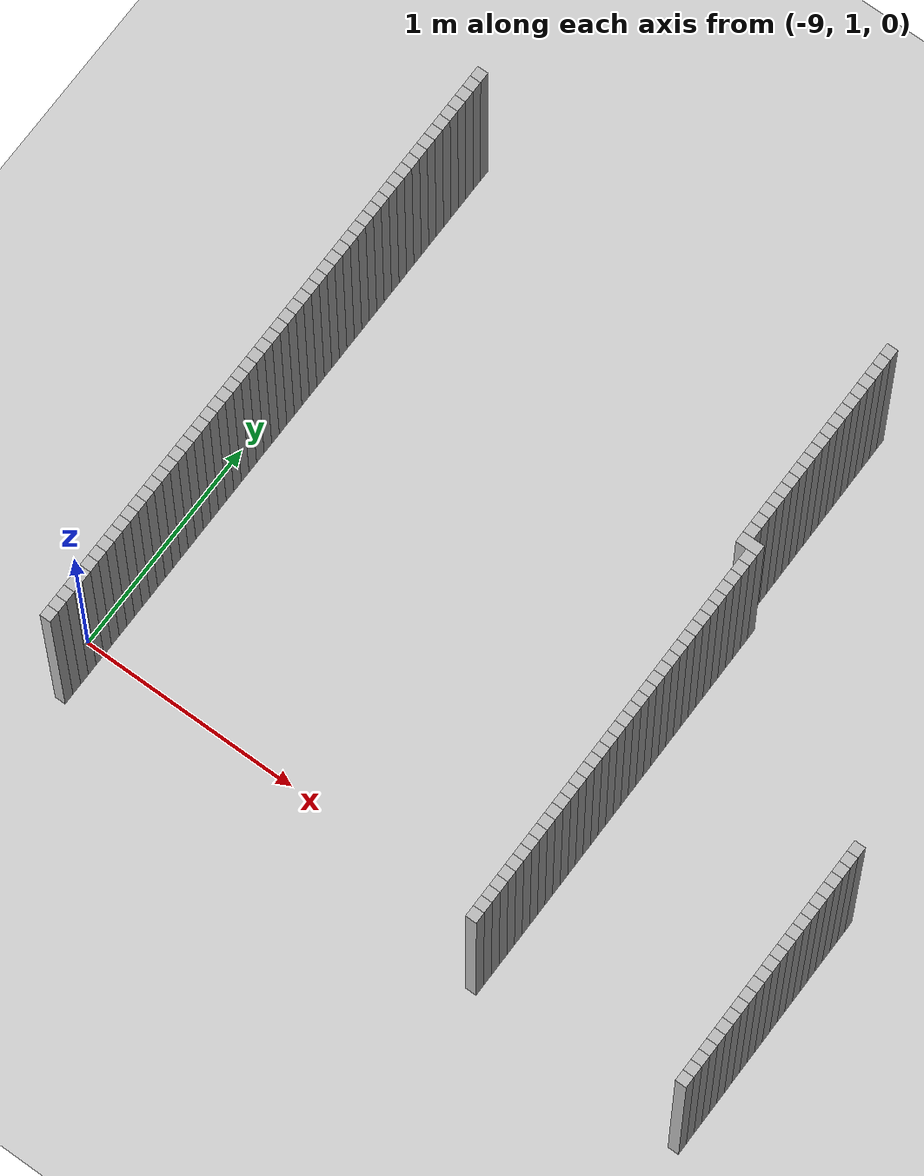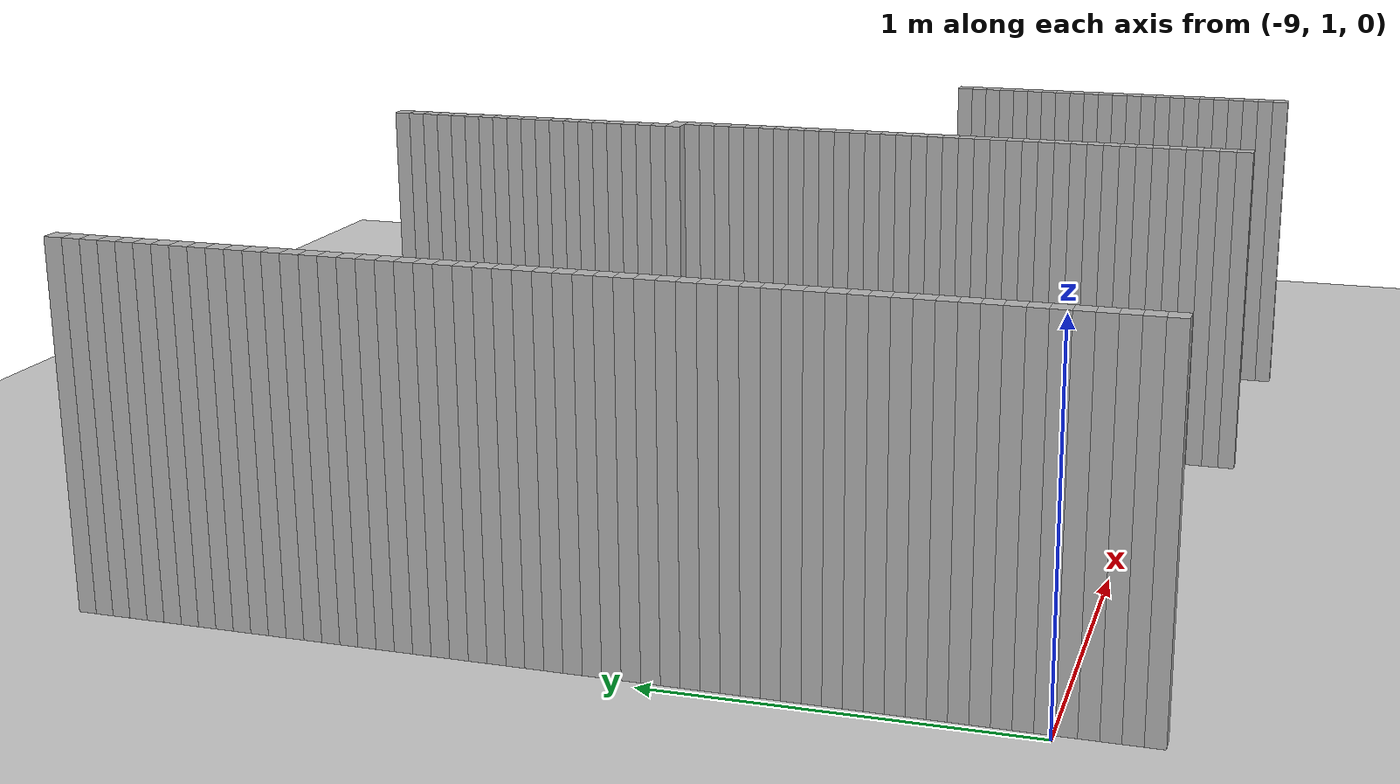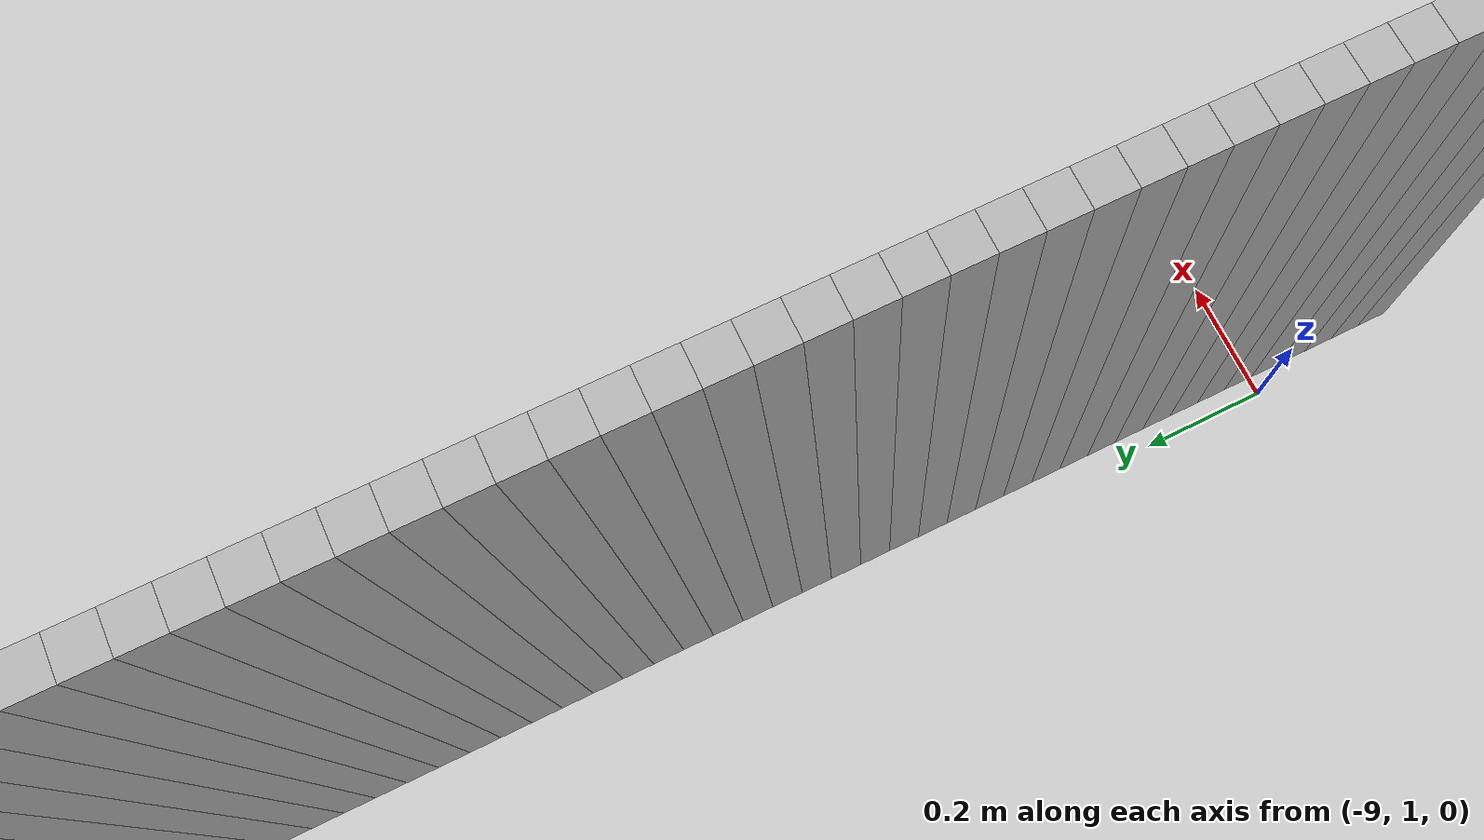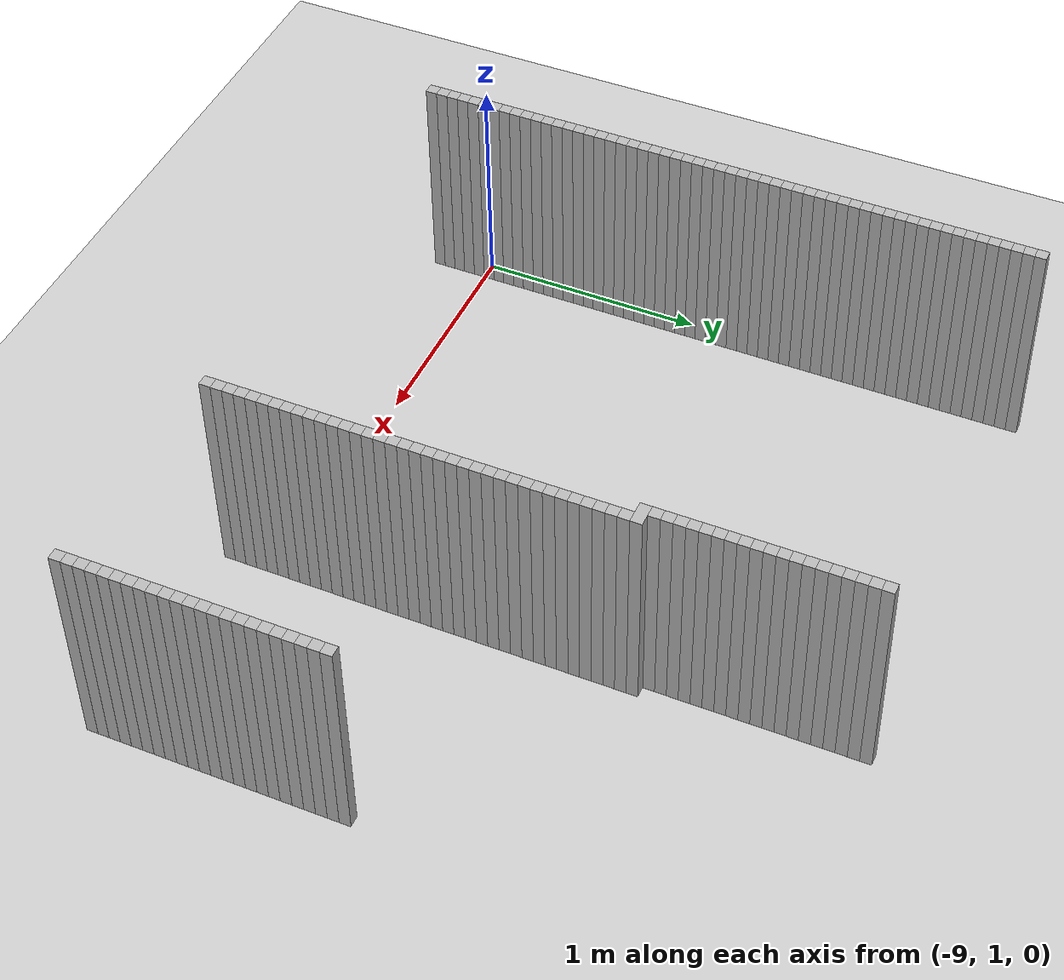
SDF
<sdf version="1.6">
 <world name="udh1_world">
  <include><uri>model://ground_plane</uri></include>
  <include><uri>model://sun</uri></include>
  <model name="wall_806">
   <static>true</static>
   <pose>-8.945 3.5199999999999996 0.5 0 0 0</pose>
   <link name="link">
    <collision name="col"><geometry><box><size>0.05 0.05 1</size></box></geometry></collision>
    <visual name="vis"><geometry><box><size>0.05 0.05 1</size></box></geometry></visual>
   </link>
  </model>
  <model name="wall_807">
   <static>true</static>
   <pose>-6.994999999999999 3.5199999999999996 0.5 0 0 0</pose>
   <link name="link">
    <collision name="col"><geometry><box><size>0.05 0.05 1</size></box></geometry></collision>
    <visual name="vis"><geometry><box><size>0.05 0.05 1</size></box></geometry></visual>
   </link>
  </model>
  <model name="wall_816">
   <static>true</static>
   <pose>-8.945 3.4700000000000006 0.5 0 0 0</pose>
   <link name="link">
    <collision name="col"><geometry><box><size>0.05 0.05 1</size></box></geometry></collision>
    <visual name="vis"><geometry><box><size>0.05 0.05 1</size></box></geometry></visual>
   </link>
  </model>
  <model name="wall_817">
   <static>true</static>
   <pose>-6.994999999999999 3.4700000000000006 0.5 0 0 0</pose>
   <link name="link">
    <collision name="col"><geometry><box><size>0.05 0.05 1</size></box></geometry></collision>
    <visual name="vis"><geometry><box><size>0.05 0.05 1</size></box></geometry></visual>
   </link>
  </model>
  <model name="wall_826">
   <static>true</static>
   <pose>-8.945 3.42 0.5 0 0 0</pose>
   <link name="link">
    <collision name="col"><geometry><box><size>0.05 0.05 1</size></box></geometry></collision>
    <visual name="vis"><geometry><box><size>0.05 0.05 1</size></box></geometry></visual>
   </link>
  </model>
  <model name="wall_827">
   <static>true</static>
   <pose>-6.994999999999999 3.42 0.5 0 0 0</pose>
   <link name="link">
    <collision name="col"><geometry><box><size>0.05 0.05 1</size></box></geometry></collision>
    <visual name="vis"><geometry><box><size>0.05 0.05 1</size></box></geometry></visual>
   </link>
  </model>
  <model name="wall_836">
   <static>true</static>
   <pose>-8.945 3.369999999999999 0.5 0 0 0</pose>
   <link name="link">
    <collision name="col"><geometry><box><size>0.05 0.05 1</size></box></geometry></collision>
    <visual name="vis"><geometry><box><size>0.05 0.05 1</size></box></geometry></visual>
   </link>
  </model>
  <model name="wall_837">
   <static>true</static>
   <pose>-6.994999999999999 3.369999999999999 0.5 0 0 0</pose>
   <link name="link">
    <collision name="col"><geometry><box><size>0.05 0.05 1</size></box></geometry></collision>
    <visual name="vis"><geometry><box><size>0.05 0.05 1</size></box></geometry></visual>
   </link>
  </model>
  <model name="wall_846">
   <static>true</static>
   <pose>-8.945 3.3200000000000003 0.5 0 0 0</pose>
   <link name="link">
    <collision name="col"><geometry><box><size>0.05 0.05 1</size></box></geometry></collision>
    <visual name="vis"><geometry><box><size>0.05 0.05 1</size></box></geometry></visual>
   </link>
  </model>
  <model name="wall_847">
   <static>true</static>
   <pose>-6.994999999999999 3.3200000000000003 0.5 0 0 0</pose>
   <link name="link">
    <collision name="col"><geometry><box><size>0.05 0.05 1</size></box></geometry></collision>
    <visual name="vis"><geometry><box><size>0.05 0.05 1</size></box></geometry></visual>
   </link>
  </model>
  <model name="wall_856">
   <static>true</static>
   <pose>-8.945 3.2699999999999996 0.5 0 0 0</pose>
   <link name="link">
    <collision name="col"><geometry><box><size>0.05 0.05 1</size></box></geometry></collision>
    <visual name="vis"><geometry><box><size>0.05 0.05 1</size></box></geometry></visual>
   </link>
  </model>
  <model name="wall_857">
   <static>true</static>
   <pose>-6.994999999999999 3.2699999999999996 0.5 0 0 0</pose>
   <link name="link">
    <collision name="col"><geometry><box><size>0.05 0.05 1</size></box></geometry></collision>
    <visual name="vis"><geometry><box><size>0.05 0.05 1</size></box></geometry></visual>
   </link>
  </model>
  <model name="wall_866">
   <static>true</static>
   <pose>-8.945 3.2200000000000006 0.5 0 0 0</pose>
   <link name="link">
    <collision name="col"><geometry><box><size>0.05 0.05 1</size></box></geometry></collision>
    <visual name="vis"><geometry><box><size>0.05 0.05 1</size></box></geometry></visual>
   </link>
  </model>
  <model name="wall_867">
   <static>true</static>
   <pose>-6.994999999999999 3.2200000000000006 0.5 0 0 0</pose>
   <link name="link">
    <collision name="col"><geometry><box><size>0.05 0.05 1</size></box></geometry></collision>
    <visual name="vis"><geometry><box><size>0.05 0.05 1</size></box></geometry></visual>
   </link>
  </model>
  <model name="wall_876">
   <static>true</static>
   <pose>-8.945 3.17 0.5 0 0 0</pose>
   <link name="link">
    <collision name="col"><geometry><box><size>0.05 0.05 1</size></box></geometry></collision>
    <visual name="vis"><geometry><box><size>0.05 0.05 1</size></box></geometry></visual>
   </link>
  </model>
  <model name="wall_877">
   <static>true</static>
   <pose>-6.994999999999999 3.17 0.5 0 0 0</pose>
   <link name="link">
    <collision name="col"><geometry><box><size>0.05 0.05 1</size></box></geometry></collision>
    <visual name="vis"><geometry><box><size>0.05 0.05 1</size></box></geometry></visual>
   </link>
  </model>
  <model name="wall_886">
   <static>true</static>
   <pose>-8.945 3.119999999999999 0.5 0 0 0</pose>
   <link name="link">
    <collision name="col"><geometry><box><size>0.05 0.05 1</size></box></geometry></collision>
    <visual name="vis"><geometry><box><size>0.05 0.05 1</size></box></geometry></visual>
   </link>
  </model>
  <model name="wall_887">
   <static>true</static>
   <pose>-6.994999999999999 3.119999999999999 0.5 0 0 0</pose>
   <link name="link">
    <collision name="col"><geometry><box><size>0.05 0.05 1</size></box></geometry></collision>
    <visual name="vis"><geometry><box><size>0.05 0.05 1</size></box></geometry></visual>
   </link>
  </model>
  <model name="wall_896">
   <static>true</static>
   <pose>-8.945 3.0700000000000003 0.5 0 0 0</pose>
   <link name="link">
    <collision name="col"><geometry><box><size>0.05 0.05 1</size></box></geometry></collision>
    <visual name="vis"><geometry><box><size>0.05 0.05 1</size></box></geometry></visual>
   </link>
  </model>
  <model name="wall_897">
   <static>true</static>
   <pose>-6.994999999999999 3.0700000000000003 0.5 0 0 0</pose>
   <link name="link">
    <collision name="col"><geometry><box><size>0.05 0.05 1</size></box></geometry></collision>
    <visual name="vis"><geometry><box><size>0.05 0.05 1</size></box></geometry></visual>
   </link>
  </model>
  <model name="wall_906">
   <static>true</static>
   <pose>-8.945 3.0199999999999996 0.5 0 0 0</pose>
   <link name="link">
    <collision name="col"><geometry><box><size>0.05 0.05 1</size></box></geometry></collision>
    <visual name="vis"><geometry><box><size>0.05 0.05 1</size></box></geometry></visual>
   </link>
  </model>
  <model name="wall_907">
   <static>true</static>
   <pose>-6.994999999999999 3.0199999999999996 0.5 0 0 0</pose>
   <link name="link">
    <collision name="col"><geometry><box><size>0.05 0.05 1</size></box></geometry></collision>
    <visual name="vis"><geometry><box><size>0.05 0.05 1</size></box></geometry></visual>
   </link>
  </model>
  <model name="wall_916">
   <static>true</static>
   <pose>-8.945 2.9700000000000006 0.5 0 0 0</pose>
   <link name="link">
    <collision name="col"><geometry><box><size>0.05 0.05 1</size></box></geometry></collision>
    <visual name="vis"><geometry><box><size>0.05 0.05 1</size></box></geometry></visual>
   </link>
  </model>
  <model name="wall_917">
   <static>true</static>
   <pose>-6.994999999999999 2.9700000000000006 0.5 0 0 0</pose>
   <link name="link">
    <collision name="col"><geometry><box><size>0.05 0.05 1</size></box></geometry></collision>
    <visual name="vis"><geometry><box><size>0.05 0.05 1</size></box></geometry></visual>
   </link>
  </model>
  <model name="wall_926">
   <static>true</static>
   <pose>-8.945 2.92 0.5 0 0 0</pose>
   <link name="link">
    <collision name="col"><geometry><box><size>0.05 0.05 1</size></box></geometry></collision>
    <visual name="vis"><geometry><box><size>0.05 0.05 1</size></box></geometry></visual>
   </link>
  </model>
  <model name="wall_927">
   <static>true</static>
   <pose>-6.994999999999999 2.92 0.5 0 0 0</pose>
   <link name="link">
    <collision name="col"><geometry><box><size>0.05 0.05 1</size></box></geometry></collision>
    <visual name="vis"><geometry><box><size>0.05 0.05 1</size></box></geometry></visual>
   </link>
  </model>
  <model name="wall_936">
   <static>true</static>
   <pose>-8.945 2.869999999999999 0.5 0 0 0</pose>
   <link name="link">
    <collision name="col"><geometry><box><size>0.05 0.05 1</size></box></geometry></collision>
    <visual name="vis"><geometry><box><size>0.05 0.05 1</size></box></geometry></visual>
   </link>
  </model>
  <model name="wall_937">
   <static>true</static>
   <pose>-6.994999999999999 2.869999999999999 0.5 0 0 0</pose>
   <link name="link">
    <collision name="col"><geometry><box><size>0.05 0.05 1</size></box></geometry></collision>
    <visual name="vis"><geometry><box><size>0.05 0.05 1</size></box></geometry></visual>
   </link>
  </model>
  <model name="wall_946">
   <static>true</static>
   <pose>-8.945 2.8200000000000003 0.5 0 0 0</pose>
   <link name="link">
    <collision name="col"><geometry><box><size>0.05 0.05 1</size></box></geometry></collision>
    <visual name="vis"><geometry><box><size>0.05 0.05 1</size></box></geometry></visual>
   </link>
  </model>
  <model name="wall_947">
   <static>true</static>
   <pose>-6.994999999999999 2.8200000000000003 0.5 0 0 0</pose>
   <link name="link">
    <collision name="col"><geometry><box><size>0.05 0.05 1</size></box></geometry></collision>
    <visual name="vis"><geometry><box><size>0.05 0.05 1</size></box></geometry></visual>
   </link>
  </model>
  <model name="wall_956">
   <static>true</static>
   <pose>-8.945 2.7699999999999996 0.5 0 0 0</pose>
   <link name="link">
    <collision name="col"><geometry><box><size>0.05 0.05 1</size></box></geometry></collision>
    <visual name="vis"><geometry><box><size>0.05 0.05 1</size></box></geometry></visual>
   </link>
  </model>
  <model name="wall_957">
   <static>true</static>
   <pose>-6.994999999999999 2.7699999999999996 0.5 0 0 0</pose>
   <link name="link">
    <collision name="col"><geometry><box><size>0.05 0.05 1</size></box></geometry></collision>
    <visual name="vis"><geometry><box><size>0.05 0.05 1</size></box></geometry></visual>
   </link>
  </model>
  <model name="wall_966">
   <static>true</static>
   <pose>-8.945 2.7200000000000006 0.5 0 0 0</pose>
   <link name="link">
    <collision name="col"><geometry><box><size>0.05 0.05 1</size></box></geometry></collision>
    <visual name="vis"><geometry><box><size>0.05 0.05 1</size></box></geometry></visual>
   </link>
  </model>
  <model name="wall_967">
   <static>true</static>
   <pose>-6.994999999999999 2.7200000000000006 0.5 0 0 0</pose>
   <link name="link">
    <collision name="col"><geometry><box><size>0.05 0.05 1</size></box></geometry></collision>
    <visual name="vis"><geometry><box><size>0.05 0.05 1</size></box></geometry></visual>
   </link>
  </model>
  <model name="wall_976">
   <static>true</static>
   <pose>-8.945 2.67 0.5 0 0 0</pose>
   <link name="link">
    <collision name="col"><geometry><box><size>0.05 0.05 1</size></box></geometry></collision>
    <visual name="vis"><geometry><box><size>0.05 0.05 1</size></box></geometry></visual>
   </link>
  </model>
  <model name="wall_977">
   <static>true</static>
   <pose>-6.994999999999999 2.67 0.5 0 0 0</pose>
   <link name="link">
    <collision name="col"><geometry><box><size>0.05 0.05 1</size></box></geometry></collision>
    <visual name="vis"><geometry><box><size>0.05 0.05 1</size></box></geometry></visual>
   </link>
  </model>
  <model name="wall_986">
   <static>true</static>
   <pose>-8.945 2.619999999999999 0.5 0 0 0</pose>
   <link name="link">
    <collision name="col"><geometry><box><size>0.05 0.05 1</size></box></geometry></collision>
    <visual name="vis"><geometry><box><size>0.05 0.05 1</size></box></geometry></visual>
   </link>
  </model>
  <model name="wall_987">
   <static>true</static>
   <pose>-6.994999999999999 2.619999999999999 0.5 0 0 0</pose>
   <link name="link">
    <collision name="col"><geometry><box><size>0.05 0.05 1</size></box></geometry></collision>
    <visual name="vis"><geometry><box><size>0.05 0.05 1</size></box></geometry></visual>
   </link>
  </model>
  <model name="wall_996">
   <static>true</static>
   <pose>-8.945 2.5700000000000003 0.5 0 0 0</pose>
   <link name="link">
    <collision name="col"><geometry><box><size>0.05 0.05 1</size></box></geometry></collision>
    <visual name="vis"><geometry><box><size>0.05 0.05 1</size></box></geometry></visual>
   </link>
  </model>
  <model name="wall_997">
   <static>true</static>
   <pose>-6.969999999999999 2.5700000000000003 0.5 0 0 0</pose>
   <link name="link">
    <collision name="col"><geometry><box><size>0.1 0.05 1</size></box></geometry></collision>
    <visual name="vis"><geometry><box><size>0.1 0.05 1</size></box></geometry></visual>
   </link>
  </model>
  <model name="wall_1006">
   <static>true</static>
   <pose>-8.945 2.5199999999999996 0.5 0 0 0</pose>
   <link name="link">
    <collision name="col"><geometry><box><size>0.05 0.05 1</size></box></geometry></collision>
    <visual name="vis"><geometry><box><size>0.05 0.05 1</size></box></geometry></visual>
   </link>
  </model>
  <model name="wall_1007">
   <static>true</static>
   <pose>-6.944999999999999 2.5199999999999996 0.5 0 0 0</pose>
   <link name="link">
    <collision name="col"><geometry><box><size>0.05 0.05 1</size></box></geometry></collision>
    <visual name="vis"><geometry><box><size>0.05 0.05 1</size></box></geometry></visual>
   </link>
  </model>
  <model name="wall_1016">
   <static>true</static>
   <pose>-8.945 2.4700000000000006 0.5 0 0 0</pose>
   <link name="link">
    <collision name="col"><geometry><box><size>0.05 0.05 1</size></box></geometry></collision>
    <visual name="vis"><geometry><box><size>0.05 0.05 1</size></box></geometry></visual>
   </link>
  </model>
  <model name="wall_1017">
   <static>true</static>
   <pose>-6.944999999999999 2.4700000000000006 0.5 0 0 0</pose>
   <link name="link">
    <collision name="col"><geometry><box><size>0.05 0.05 1</size></box></geometry></collision>
    <visual name="vis"><geometry><box><size>0.05 0.05 1</size></box></geometry></visual>
   </link>
  </model>
  <model name="wall_1026">
   <static>true</static>
   <pose>-8.945 2.42 0.5 0 0 0</pose>
   <link name="link">
    <collision name="col"><geometry><box><size>0.05 0.05 1</size></box></geometry></collision>
    <visual name="vis"><geometry><box><size>0.05 0.05 1</size></box></geometry></visual>
   </link>
  </model>
  <model name="wall_1027">
   <static>true</static>
   <pose>-6.944999999999999 2.42 0.5 0 0 0</pose>
   <link name="link">
    <collision name="col"><geometry><box><size>0.05 0.05 1</size></box></geometry></collision>
    <visual name="vis"><geometry><box><size>0.05 0.05 1</size></box></geometry></visual>
   </link>
  </model>
  <model name="wall_1036">
   <static>true</static>
   <pose>-8.945 2.369999999999999 0.5 0 0 0</pose>
   <link name="link">
    <collision name="col"><geometry><box><size>0.05 0.05 1</size></box></geometry></collision>
    <visual name="vis"><geometry><box><size>0.05 0.05 1</size></box></geometry></visual>
   </link>
  </model>
  <model name="wall_1037">
   <static>true</static>
   <pose>-6.944999999999999 2.369999999999999 0.5 0 0 0</pose>
   <link name="link">
    <collision name="col"><geometry><box><size>0.05 0.05 1</size></box></geometry></collision>
    <visual name="vis"><geometry><box><size>0.05 0.05 1</size></box></geometry></visual>
   </link>
  </model>
  <model name="wall_1046">
   <static>true</static>
   <pose>-8.945 2.3200000000000003 0.5 0 0 0</pose>
   <link name="link">
    <collision name="col"><geometry><box><size>0.05 0.05 1</size></box></geometry></collision>
    <visual name="vis"><geometry><box><size>0.05 0.05 1</size></box></geometry></visual>
   </link>
  </model>
  <model name="wall_1047">
   <static>true</static>
   <pose>-6.944999999999999 2.3200000000000003 0.5 0 0 0</pose>
   <link name="link">
    <collision name="col"><geometry><box><size>0.05 0.05 1</size></box></geometry></collision>
    <visual name="vis"><geometry><box><size>0.05 0.05 1</size></box></geometry></visual>
   </link>
  </model>
  <model name="wall_1056">
   <static>true</static>
   <pose>-8.945 2.2699999999999996 0.5 0 0 0</pose>
   <link name="link">
    <collision name="col"><geometry><box><size>0.05 0.05 1</size></box></geometry></collision>
    <visual name="vis"><geometry><box><size>0.05 0.05 1</size></box></geometry></visual>
   </link>
  </model>
  <model name="wall_1057">
   <static>true</static>
   <pose>-6.944999999999999 2.2699999999999996 0.5 0 0 0</pose>
   <link name="link">
    <collision name="col"><geometry><box><size>0.05 0.05 1</size></box></geometry></collision>
    <visual name="vis"><geometry><box><size>0.05 0.05 1</size></box></geometry></visual>
   </link>
  </model>
  <model name="wall_1066">
   <static>true</static>
   <pose>-8.945 2.2200000000000006 0.5 0 0 0</pose>
   <link name="link">
    <collision name="col"><geometry><box><size>0.05 0.05 1</size></box></geometry></collision>
    <visual name="vis"><geometry><box><size>0.05 0.05 1</size></box></geometry></visual>
   </link>
  </model>
  <model name="wall_1067">
   <static>true</static>
   <pose>-6.944999999999999 2.2200000000000006 0.5 0 0 0</pose>
   <link name="link">
    <collision name="col"><geometry><box><size>0.05 0.05 1</size></box></geometry></collision>
    <visual name="vis"><geometry><box><size>0.05 0.05 1</size></box></geometry></visual>
   </link>
  </model>
  <model name="wall_1076">
   <static>true</static>
   <pose>-8.945 2.17 0.5 0 0 0</pose>
   <link name="link">
    <collision name="col"><geometry><box><size>0.05 0.05 1</size></box></geometry></collision>
    <visual name="vis"><geometry><box><size>0.05 0.05 1</size></box></geometry></visual>
   </link>
  </model>
  <model name="wall_1077">
   <static>true</static>
   <pose>-6.944999999999999 2.17 0.5 0 0 0</pose>
   <link name="link">
    <collision name="col"><geometry><box><size>0.05 0.05 1</size></box></geometry></collision>
    <visual name="vis"><geometry><box><size>0.05 0.05 1</size></box></geometry></visual>
   </link>
  </model>
  <model name="wall_1093">
   <static>true</static>
   <pose>-8.945 2.119999999999999 0.5 0 0 0</pose>
   <link name="link">
    <collision name="col"><geometry><box><size>0.05 0.05 1</size></box></geometry></collision>
    <visual name="vis"><geometry><box><size>0.05 0.05 1</size></box></geometry></visual>
   </link>
  </model>
  <model name="wall_1094">
   <static>true</static>
   <pose>-6.944999999999999 2.119999999999999 0.5 0 0 0</pose>
   <link name="link">
    <collision name="col"><geometry><box><size>0.05 0.05 1</size></box></geometry></collision>
    <visual name="vis"><geometry><box><size>0.05 0.05 1</size></box></geometry></visual>
   </link>
  </model>
  <model name="wall_1103">
   <static>true</static>
   <pose>-8.945 2.0700000000000003 0.5 0 0 0</pose>
   <link name="link">
    <collision name="col"><geometry><box><size>0.05 0.05 1</size></box></geometry></collision>
    <visual name="vis"><geometry><box><size>0.05 0.05 1</size></box></geometry></visual>
   </link>
  </model>
  <model name="wall_1104">
   <static>true</static>
   <pose>-6.944999999999999 2.0700000000000003 0.5 0 0 0</pose>
   <link name="link">
    <collision name="col"><geometry><box><size>0.05 0.05 1</size></box></geometry></collision>
    <visual name="vis"><geometry><box><size>0.05 0.05 1</size></box></geometry></visual>
   </link>
  </model>
  <model name="wall_1113">
   <static>true</static>
   <pose>-8.945 2.0199999999999996 0.5 0 0 0</pose>
   <link name="link">
    <collision name="col"><geometry><box><size>0.05 0.05 1</size></box></geometry></collision>
    <visual name="vis"><geometry><box><size>0.05 0.05 1</size></box></geometry></visual>
   </link>
  </model>
  <model name="wall_1114">
   <static>true</static>
   <pose>-6.944999999999999 2.0199999999999996 0.5 0 0 0</pose>
   <link name="link">
    <collision name="col"><geometry><box><size>0.05 0.05 1</size></box></geometry></collision>
    <visual name="vis"><geometry><box><size>0.05 0.05 1</size></box></geometry></visual>
   </link>
  </model>
  <model name="wall_1123">
   <static>true</static>
   <pose>-8.945 1.9700000000000006 0.5 0 0 0</pose>
   <link name="link">
    <collision name="col"><geometry><box><size>0.05 0.05 1</size></box></geometry></collision>
    <visual name="vis"><geometry><box><size>0.05 0.05 1</size></box></geometry></visual>
   </link>
  </model>
  <model name="wall_1124">
   <static>true</static>
   <pose>-6.944999999999999 1.9700000000000006 0.5 0 0 0</pose>
   <link name="link">
    <collision name="col"><geometry><box><size>0.05 0.05 1</size></box></geometry></collision>
    <visual name="vis"><geometry><box><size>0.05 0.05 1</size></box></geometry></visual>
   </link>
  </model>
  <model name="wall_1133">
   <static>true</static>
   <pose>-8.945 1.92 0.5 0 0 0</pose>
   <link name="link">
    <collision name="col"><geometry><box><size>0.05 0.05 1</size></box></geometry></collision>
    <visual name="vis"><geometry><box><size>0.05 0.05 1</size></box></geometry></visual>
   </link>
  </model>
  <model name="wall_1134">
   <static>true</static>
   <pose>-6.944999999999999 1.92 0.5 0 0 0</pose>
   <link name="link">
    <collision name="col"><geometry><box><size>0.05 0.05 1</size></box></geometry></collision>
    <visual name="vis"><geometry><box><size>0.05 0.05 1</size></box></geometry></visual>
   </link>
  </model>
  <model name="wall_1143">
   <static>true</static>
   <pose>-8.945 1.8699999999999992 0.5 0 0 0</pose>
   <link name="link">
    <collision name="col"><geometry><box><size>0.05 0.05 1</size></box></geometry></collision>
    <visual name="vis"><geometry><box><size>0.05 0.05 1</size></box></geometry></visual>
   </link>
  </model>
  <model name="wall_1144">
   <static>true</static>
   <pose>-6.944999999999999 1.8699999999999992 0.5 0 0 0</pose>
   <link name="link">
    <collision name="col"><geometry><box><size>0.05 0.05 1</size></box></geometry></collision>
    <visual name="vis"><geometry><box><size>0.05 0.05 1</size></box></geometry></visual>
   </link>
  </model>
  <model name="wall_1153">
   <static>true</static>
   <pose>-8.945 1.8200000000000003 0.5 0 0 0</pose>
   <link name="link">
    <collision name="col"><geometry><box><size>0.05 0.05 1</size></box></geometry></collision>
    <visual name="vis"><geometry><box><size>0.05 0.05 1</size></box></geometry></visual>
   </link>
  </model>
  <model name="wall_1154">
   <static>true</static>
   <pose>-6.944999999999999 1.8200000000000003 0.5 0 0 0</pose>
   <link name="link">
    <collision name="col"><geometry><box><size>0.05 0.05 1</size></box></geometry></collision>
    <visual name="vis"><geometry><box><size>0.05 0.05 1</size></box></geometry></visual>
   </link>
  </model>
  <model name="wall_1155">
   <static>true</static>
   <pose>-5.944999999999999 1.8200000000000003 0.5 0 0 0</pose>
   <link name="link">
    <collision name="col"><geometry><box><size>0.05 0.05 1</size></box></geometry></collision>
    <visual name="vis"><geometry><box><size>0.05 0.05 1</size></box></geometry></visual>
   </link>
  </model>
  <model name="wall_1163">
   <static>true</static>
   <pose>-8.945 1.7699999999999996 0.5 0 0 0</pose>
   <link name="link">
    <collision name="col"><geometry><box><size>0.05 0.05 1</size></box></geometry></collision>
    <visual name="vis"><geometry><box><size>0.05 0.05 1</size></box></geometry></visual>
   </link>
  </model>
  <model name="wall_1164">
   <static>true</static>
   <pose>-6.944999999999999 1.7699999999999996 0.5 0 0 0</pose>
   <link name="link">
    <collision name="col"><geometry><box><size>0.05 0.05 1</size></box></geometry></collision>
    <visual name="vis"><geometry><box><size>0.05 0.05 1</size></box></geometry></visual>
   </link>
  </model>
  <model name="wall_1165">
   <static>true</static>
   <pose>-5.944999999999999 1.7699999999999996 0.5 0 0 0</pose>
   <link name="link">
    <collision name="col"><geometry><box><size>0.05 0.05 1</size></box></geometry></collision>
    <visual name="vis"><geometry><box><size>0.05 0.05 1</size></box></geometry></visual>
   </link>
  </model>
  <model name="wall_1173">
   <static>true</static>
   <pose>-8.945 1.7200000000000006 0.5 0 0 0</pose>
   <link name="link">
    <collision name="col"><geometry><box><size>0.05 0.05 1</size></box></geometry></collision>
    <visual name="vis"><geometry><box><size>0.05 0.05 1</size></box></geometry></visual>
   </link>
  </model>
  <model name="wall_1174">
   <static>true</static>
   <pose>-6.944999999999999 1.7200000000000006 0.5 0 0 0</pose>
   <link name="link">
    <collision name="col"><geometry><box><size>0.05 0.05 1</size></box></geometry></collision>
    <visual name="vis"><geometry><box><size>0.05 0.05 1</size></box></geometry></visual>
   </link>
  </model>
  <model name="wall_1175">
   <static>true</static>
   <pose>-5.944999999999999 1.7200000000000006 0.5 0 0 0</pose>
   <link name="link">
    <collision name="col"><geometry><box><size>0.05 0.05 1</size></box></geometry></collision>
    <visual name="vis"><geometry><box><size>0.05 0.05 1</size></box></geometry></visual>
   </link>
  </model>
  <model name="wall_1183">
   <static>true</static>
   <pose>-8.945 1.67 0.5 0 0 0</pose>
   <link name="link">
    <collision name="col"><geometry><box><size>0.05 0.05 1</size></box></geometry></collision>
    <visual name="vis"><geometry><box><size>0.05 0.05 1</size></box></geometry></visual>
   </link>
  </model>
  <model name="wall_1184">
   <static>true</static>
   <pose>-6.944999999999999 1.67 0.5 0 0 0</pose>
   <link name="link">
    <collision name="col"><geometry><box><size>0.05 0.05 1</size></box></geometry></collision>
    <visual name="vis"><geometry><box><size>0.05 0.05 1</size></box></geometry></visual>
   </link>
  </model>
  <model name="wall_1185">
   <static>true</static>
   <pose>-5.944999999999999 1.67 0.5 0 0 0</pose>
   <link name="link">
    <collision name="col"><geometry><box><size>0.05 0.05 1</size></box></geometry></collision>
    <visual name="vis"><geometry><box><size>0.05 0.05 1</size></box></geometry></visual>
   </link>
  </model>
  <model name="wall_1192">
   <static>true</static>
   <pose>-8.945 1.6199999999999992 0.5 0 0 0</pose>
   <link name="link">
    <collision name="col"><geometry><box><size>0.05 0.05 1</size></box></geometry></collision>
    <visual name="vis"><geometry><box><size>0.05 0.05 1</size></box></geometry></visual>
   </link>
  </model>
  <model name="wall_1193">
   <static>true</static>
   <pose>-6.944999999999999 1.6199999999999992 0.5 0 0 0</pose>
   <link name="link">
    <collision name="col"><geometry><box><size>0.05 0.05 1</size></box></geometry></collision>
    <visual name="vis"><geometry><box><size>0.05 0.05 1</size></box></geometry></visual>
   </link>
  </model>
  <model name="wall_1194">
   <static>true</static>
   <pose>-5.944999999999999 1.6199999999999992 0.5 0 0 0</pose>
   <link name="link">
    <collision name="col"><geometry><box><size>0.05 0.05 1</size></box></geometry></collision>
    <visual name="vis"><geometry><box><size>0.05 0.05 1</size></box></geometry></visual>
   </link>
  </model>
  <model name="wall_1201">
   <static>true</static>
   <pose>-8.945 1.5700000000000003 0.5 0 0 0</pose>
   <link name="link">
    <collision name="col"><geometry><box><size>0.05 0.05 1</size></box></geometry></collision>
    <visual name="vis"><geometry><box><size>0.05 0.05 1</size></box></geometry></visual>
   </link>
  </model>
  <model name="wall_1202">
   <static>true</static>
   <pose>-6.944999999999999 1.5700000000000003 0.5 0 0 0</pose>
   <link name="link">
    <collision name="col"><geometry><box><size>0.05 0.05 1</size></box></geometry></collision>
    <visual name="vis"><geometry><box><size>0.05 0.05 1</size></box></geometry></visual>
   </link>
  </model>
  <model name="wall_1203">
   <static>true</static>
   <pose>-5.944999999999999 1.5700000000000003 0.5 0 0 0</pose>
   <link name="link">
    <collision name="col"><geometry><box><size>0.05 0.05 1</size></box></geometry></collision>
    <visual name="vis"><geometry><box><size>0.05 0.05 1</size></box></geometry></visual>
   </link>
  </model>
  <model name="wall_1211">
   <static>true</static>
   <pose>-8.945 1.5199999999999996 0.5 0 0 0</pose>
   <link name="link">
    <collision name="col"><geometry><box><size>0.05 0.05 1</size></box></geometry></collision>
    <visual name="vis"><geometry><box><size>0.05 0.05 1</size></box></geometry></visual>
   </link>
  </model>
  <model name="wall_1212">
   <static>true</static>
   <pose>-6.944999999999999 1.5199999999999996 0.5 0 0 0</pose>
   <link name="link">
    <collision name="col"><geometry><box><size>0.05 0.05 1</size></box></geometry></collision>
    <visual name="vis"><geometry><box><size>0.05 0.05 1</size></box></geometry></visual>
   </link>
  </model>
  <model name="wall_1213">
   <static>true</static>
   <pose>-5.944999999999999 1.5199999999999996 0.5 0 0 0</pose>
   <link name="link">
    <collision name="col"><geometry><box><size>0.05 0.05 1</size></box></geometry></collision>
    <visual name="vis"><geometry><box><size>0.05 0.05 1</size></box></geometry></visual>
   </link>
  </model>
  <model name="wall_1221">
   <static>true</static>
   <pose>-8.945 1.4700000000000006 0.5 0 0 0</pose>
   <link name="link">
    <collision name="col"><geometry><box><size>0.05 0.05 1</size></box></geometry></collision>
    <visual name="vis"><geometry><box><size>0.05 0.05 1</size></box></geometry></visual>
   </link>
  </model>
  <model name="wall_1222">
   <static>true</static>
   <pose>-6.944999999999999 1.4700000000000006 0.5 0 0 0</pose>
   <link name="link">
    <collision name="col"><geometry><box><size>0.05 0.05 1</size></box></geometry></collision>
    <visual name="vis"><geometry><box><size>0.05 0.05 1</size></box></geometry></visual>
   </link>
  </model>
  <model name="wall_1223">
   <static>true</static>
   <pose>-5.944999999999999 1.4700000000000006 0.5 0 0 0</pose>
   <link name="link">
    <collision name="col"><geometry><box><size>0.05 0.05 1</size></box></geometry></collision>
    <visual name="vis"><geometry><box><size>0.05 0.05 1</size></box></geometry></visual>
   </link>
  </model>
  <model name="wall_1230">
   <static>true</static>
   <pose>-8.945 1.42 0.5 0 0 0</pose>
   <link name="link">
    <collision name="col"><geometry><box><size>0.05 0.05 1</size></box></geometry></collision>
    <visual name="vis"><geometry><box><size>0.05 0.05 1</size></box></geometry></visual>
   </link>
  </model>
  <model name="wall_1231">
   <static>true</static>
   <pose>-6.944999999999999 1.42 0.5 0 0 0</pose>
   <link name="link">
    <collision name="col"><geometry><box><size>0.05 0.05 1</size></box></geometry></collision>
    <visual name="vis"><geometry><box><size>0.05 0.05 1</size></box></geometry></visual>
   </link>
  </model>
  <model name="wall_1232">
   <static>true</static>
   <pose>-5.944999999999999 1.42 0.5 0 0 0</pose>
   <link name="link">
    <collision name="col"><geometry><box><size>0.05 0.05 1</size></box></geometry></collision>
    <visual name="vis"><geometry><box><size>0.05 0.05 1</size></box></geometry></visual>
   </link>
  </model>
  <model name="wall_1240">
   <static>true</static>
   <pose>-8.945 1.3699999999999992 0.5 0 0 0</pose>
   <link name="link">
    <collision name="col"><geometry><box><size>0.05 0.05 1</size></box></geometry></collision>
    <visual name="vis"><geometry><box><size>0.05 0.05 1</size></box></geometry></visual>
   </link>
  </model>
  <model name="wall_1241">
   <static>true</static>
   <pose>-6.944999999999999 1.3699999999999992 0.5 0 0 0</pose>
   <link name="link">
    <collision name="col"><geometry><box><size>0.05 0.05 1</size></box></geometry></collision>
    <visual name="vis"><geometry><box><size>0.05 0.05 1</size></box></geometry></visual>
   </link>
  </model>
  <model name="wall_1242">
   <static>true</static>
   <pose>-5.944999999999999 1.3699999999999992 0.5 0 0 0</pose>
   <link name="link">
    <collision name="col"><geometry><box><size>0.05 0.05 1</size></box></geometry></collision>
    <visual name="vis"><geometry><box><size>0.05 0.05 1</size></box></geometry></visual>
   </link>
  </model>
  <model name="wall_1250">
   <static>true</static>
   <pose>-8.945 1.3200000000000003 0.5 0 0 0</pose>
   <link name="link">
    <collision name="col"><geometry><box><size>0.05 0.05 1</size></box></geometry></collision>
    <visual name="vis"><geometry><box><size>0.05 0.05 1</size></box></geometry></visual>
   </link>
  </model>
  <model name="wall_1251">
   <static>true</static>
   <pose>-6.944999999999999 1.3200000000000003 0.5 0 0 0</pose>
   <link name="link">
    <collision name="col"><geometry><box><size>0.05 0.05 1</size></box></geometry></collision>
    <visual name="vis"><geometry><box><size>0.05 0.05 1</size></box></geometry></visual>
   </link>
  </model>
  <model name="wall_1252">
   <static>true</static>
   <pose>-5.944999999999999 1.3200000000000003 0.5 0 0 0</pose>
   <link name="link">
    <collision name="col"><geometry><box><size>0.05 0.05 1</size></box></geometry></collision>
    <visual name="vis"><geometry><box><size>0.05 0.05 1</size></box></geometry></visual>
   </link>
  </model>
  <model name="wall_1260">
   <static>true</static>
   <pose>-8.945 1.2699999999999996 0.5 0 0 0</pose>
   <link name="link">
    <collision name="col"><geometry><box><size>0.05 0.05 1</size></box></geometry></collision>
    <visual name="vis"><geometry><box><size>0.05 0.05 1</size></box></geometry></visual>
   </link>
  </model>
  <model name="wall_1261">
   <static>true</static>
   <pose>-6.944999999999999 1.2699999999999996 0.5 0 0 0</pose>
   <link name="link">
    <collision name="col"><geometry><box><size>0.05 0.05 1</size></box></geometry></collision>
    <visual name="vis"><geometry><box><size>0.05 0.05 1</size></box></geometry></visual>
   </link>
  </model>
  <model name="wall_1262">
   <static>true</static>
   <pose>-5.944999999999999 1.2699999999999996 0.5 0 0 0</pose>
   <link name="link">
    <collision name="col"><geometry><box><size>0.05 0.05 1</size></box></geometry></collision>
    <visual name="vis"><geometry><box><size>0.05 0.05 1</size></box></geometry></visual>
   </link>
  </model>
  <model name="wall_1270">
   <static>true</static>
   <pose>-8.945 1.2200000000000006 0.5 0 0 0</pose>
   <link name="link">
    <collision name="col"><geometry><box><size>0.05 0.05 1</size></box></geometry></collision>
    <visual name="vis"><geometry><box><size>0.05 0.05 1</size></box></geometry></visual>
   </link>
  </model>
  <model name="wall_1271">
   <static>true</static>
   <pose>-6.944999999999999 1.2200000000000006 0.5 0 0 0</pose>
   <link name="link">
    <collision name="col"><geometry><box><size>0.05 0.05 1</size></box></geometry></collision>
    <visual name="vis"><geometry><box><size>0.05 0.05 1</size></box></geometry></visual>
   </link>
  </model>
  <model name="wall_1272">
   <static>true</static>
   <pose>-5.944999999999999 1.2200000000000006 0.5 0 0 0</pose>
   <link name="link">
    <collision name="col"><geometry><box><size>0.05 0.05 1</size></box></geometry></collision>
    <visual name="vis"><geometry><box><size>0.05 0.05 1</size></box></geometry></visual>
   </link>
  </model>
  <model name="wall_1279">
   <static>true</static>
   <pose>-8.945 1.17 0.5 0 0 0</pose>
   <link name="link">
    <collision name="col"><geometry><box><size>0.05 0.05 1</size></box></geometry></collision>
    <visual name="vis"><geometry><box><size>0.05 0.05 1</size></box></geometry></visual>
   </link>
  </model>
  <model name="wall_1280">
   <static>true</static>
   <pose>-6.944999999999999 1.17 0.5 0 0 0</pose>
   <link name="link">
    <collision name="col"><geometry><box><size>0.05 0.05 1</size></box></geometry></collision>
    <visual name="vis"><geometry><box><size>0.05 0.05 1</size></box></geometry></visual>
   </link>
  </model>
  <model name="wall_1281">
   <static>true</static>
   <pose>-5.944999999999999 1.17 0.5 0 0 0</pose>
   <link name="link">
    <collision name="col"><geometry><box><size>0.05 0.05 1</size></box></geometry></collision>
    <visual name="vis"><geometry><box><size>0.05 0.05 1</size></box></geometry></visual>
   </link>
  </model>
  <model name="wall_1288">
   <static>true</static>
   <pose>-8.945 1.1199999999999992 0.5 0 0 0</pose>
   <link name="link">
    <collision name="col"><geometry><box><size>0.05 0.05 1</size></box></geometry></collision>
    <visual name="vis"><geometry><box><size>0.05 0.05 1</size></box></geometry></visual>
   </link>
  </model>
  <model name="wall_1289">
   <static>true</static>
   <pose>-6.944999999999999 1.1199999999999992 0.5 0 0 0</pose>
   <link name="link">
    <collision name="col"><geometry><box><size>0.05 0.05 1</size></box></geometry></collision>
    <visual name="vis"><geometry><box><size>0.05 0.05 1</size></box></geometry></visual>
   </link>
  </model>
  <model name="wall_1290">
   <static>true</static>
   <pose>-5.944999999999999 1.1199999999999992 0.5 0 0 0</pose>
   <link name="link">
    <collision name="col"><geometry><box><size>0.05 0.05 1</size></box></geometry></collision>
    <visual name="vis"><geometry><box><size>0.05 0.05 1</size></box></geometry></visual>
   </link>
  </model>
  <model name="wall_1301">
   <static>true</static>
   <pose>-8.945 1.0700000000000003 0.5 0 0 0</pose>
   <link name="link">
    <collision name="col"><geometry><box><size>0.05 0.05 1</size></box></geometry></collision>
    <visual name="vis"><geometry><box><size>0.05 0.05 1</size></box></geometry></visual>
   </link>
  </model>
  <model name="wall_1302">
   <static>true</static>
   <pose>-6.944999999999999 1.0700000000000003 0.5 0 0 0</pose>
   <link name="link">
    <collision name="col"><geometry><box><size>0.05 0.05 1</size></box></geometry></collision>
    <visual name="vis"><geometry><box><size>0.05 0.05 1</size></box></geometry></visual>
   </link>
  </model>
  <model name="wall_1303">
   <static>true</static>
   <pose>-5.944999999999999 1.0700000000000003 0.5 0 0 0</pose>
   <link name="link">
    <collision name="col"><geometry><box><size>0.05 0.05 1</size></box></geometry></collision>
    <visual name="vis"><geometry><box><size>0.05 0.05 1</size></box></geometry></visual>
   </link>
  </model>
  <model name="wall_1309">
   <static>true</static>
   <pose>-8.945 1.0199999999999996 0.5 0 0 0</pose>
   <link name="link">
    <collision name="col"><geometry><box><size>0.05 0.05 1</size></box></geometry></collision>
    <visual name="vis"><geometry><box><size>0.05 0.05 1</size></box></geometry></visual>
   </link>
  </model>
  <model name="wall_1310">
   <static>true</static>
   <pose>-6.944999999999999 1.0199999999999996 0.5 0 0 0</pose>
   <link name="link">
    <collision name="col"><geometry><box><size>0.05 0.05 1</size></box></geometry></collision>
    <visual name="vis"><geometry><box><size>0.05 0.05 1</size></box></geometry></visual>
   </link>
  </model>
  <model name="wall_1311">
   <static>true</static>
   <pose>-5.944999999999999 1.0199999999999996 0.5 0 0 0</pose>
   <link name="link">
    <collision name="col"><geometry><box><size>0.05 0.05 1</size></box></geometry></collision>
    <visual name="vis"><geometry><box><size>0.05 0.05 1</size></box></geometry></visual>
   </link>
  </model>
  <model name="wall_1316">
   <static>true</static>
   <pose>-8.945 0.9700000000000006 0.5 0 0 0</pose>
   <link name="link">
    <collision name="col"><geometry><box><size>0.05 0.05 1</size></box></geometry></collision>
    <visual name="vis"><geometry><box><size>0.05 0.05 1</size></box></geometry></visual>
   </link>
  </model>
  <model name="wall_1317">
   <static>true</static>
   <pose>-6.944999999999999 0.9700000000000006 0.5 0 0 0</pose>
   <link name="link">
    <collision name="col"><geometry><box><size>0.05 0.05 1</size></box></geometry></collision>
    <visual name="vis"><geometry><box><size>0.05 0.05 1</size></box></geometry></visual>
   </link>
  </model>
  <model name="wall_1318">
   <static>true</static>
   <pose>-5.944999999999999 0.9700000000000006 0.5 0 0 0</pose>
   <link name="link">
    <collision name="col"><geometry><box><size>0.05 0.05 1</size></box></geometry></collision>
    <visual name="vis"><geometry><box><size>0.05 0.05 1</size></box></geometry></visual>
   </link>
  </model>
  <model name="wall_1323">
   <static>true</static>
   <pose>-8.945 0.9199999999999999 0.5 0 0 0</pose>
   <link name="link">
    <collision name="col"><geometry><box><size>0.05 0.05 1</size></box></geometry></collision>
    <visual name="vis"><geometry><box><size>0.05 0.05 1</size></box></geometry></visual>
   </link>
  </model>
  <model name="wall_1324">
   <static>true</static>
   <pose>-6.944999999999999 0.9199999999999999 0.5 0 0 0</pose>
   <link name="link">
    <collision name="col"><geometry><box><size>0.05 0.05 1</size></box></geometry></collision>
    <visual name="vis"><geometry><box><size>0.05 0.05 1</size></box></geometry></visual>
   </link>
  </model>
  <model name="wall_1325">
   <static>true</static>
   <pose>-5.944999999999999 0.9199999999999999 0.5 0 0 0</pose>
   <link name="link">
    <collision name="col"><geometry><box><size>0.05 0.05 1</size></box></geometry></collision>
    <visual name="vis"><geometry><box><size>0.05 0.05 1</size></box></geometry></visual>
   </link>
  </model>
  <model name="wall_1330">
   <static>true</static>
   <pose>-8.945 0.8699999999999992 0.5 0 0 0</pose>
   <link name="link">
    <collision name="col"><geometry><box><size>0.05 0.05 1</size></box></geometry></collision>
    <visual name="vis"><geometry><box><size>0.05 0.05 1</size></box></geometry></visual>
   </link>
  </model>
  <model name="wall_1331">
   <static>true</static>
   <pose>-6.944999999999999 0.8699999999999992 0.5 0 0 0</pose>
   <link name="link">
    <collision name="col"><geometry><box><size>0.05 0.05 1</size></box></geometry></collision>
    <visual name="vis"><geometry><box><size>0.05 0.05 1</size></box></geometry></visual>
   </link>
  </model>
  <model name="wall_1332">
   <static>true</static>
   <pose>-5.944999999999999 0.8699999999999992 0.5 0 0 0</pose>
   <link name="link">
    <collision name="col"><geometry><box><size>0.05 0.05 1</size></box></geometry></collision>
    <visual name="vis"><geometry><box><size>0.05 0.05 1</size></box></geometry></visual>
   </link>
  </model>
  <model name="wall_1337">
   <static>true</static>
   <pose>-8.945 0.8200000000000003 0.5 0 0 0</pose>
   <link name="link">
    <collision name="col"><geometry><box><size>0.05 0.05 1</size></box></geometry></collision>
    <visual name="vis"><geometry><box><size>0.05 0.05 1</size></box></geometry></visual>
   </link>
  </model>
  <model name="wall_1338">
   <static>true</static>
   <pose>-6.944999999999999 0.8200000000000003 0.5 0 0 0</pose>
   <link name="link">
    <collision name="col"><geometry><box><size>0.05 0.05 1</size></box></geometry></collision>
    <visual name="vis"><geometry><box><size>0.05 0.05 1</size></box></geometry></visual>
   </link>
  </model>
  <model name="wall_1339">
   <static>true</static>
   <pose>-5.944999999999999 0.8200000000000003 0.5 0 0 0</pose>
   <link name="link">
    <collision name="col"><geometry><box><size>0.05 0.05 1</size></box></geometry></collision>
    <visual name="vis"><geometry><box><size>0.05 0.05 1</size></box></geometry></visual>
   </link>
  </model>
  <model name="wall_1344">
   <static>true</static>
   <pose>-8.945 0.7699999999999996 0.5 0 0 0</pose>
   <link name="link">
    <collision name="col"><geometry><box><size>0.05 0.05 1</size></box></geometry></collision>
    <visual name="vis"><geometry><box><size>0.05 0.05 1</size></box></geometry></visual>
   </link>
  </model>
  <model name="wall_1345">
   <static>true</static>
   <pose>-6.944999999999999 0.7699999999999996 0.5 0 0 0</pose>
   <link name="link">
    <collision name="col"><geometry><box><size>0.05 0.05 1</size></box></geometry></collision>
    <visual name="vis"><geometry><box><size>0.05 0.05 1</size></box></geometry></visual>
   </link>
  </model>
  <model name="wall_1346">
   <static>true</static>
   <pose>-5.944999999999999 0.7699999999999996 0.5 0 0 0</pose>
   <link name="link">
    <collision name="col"><geometry><box><size>0.05 0.05 1</size></box></geometry></collision>
    <visual name="vis"><geometry><box><size>0.05 0.05 1</size></box></geometry></visual>
   </link>
  </model>
  <model name="wall_1354">
   <static>true</static>
   <pose>-5.944999999999999 0.7200000000000006 0.5 0 0 0</pose>
   <link name="link">
    <collision name="col"><geometry><box><size>0.05 0.05 1</size></box></geometry></collision>
    <visual name="vis"><geometry><box><size>0.05 0.05 1</size></box></geometry></visual>
   </link>
  </model>
 </world>
</sdf>
